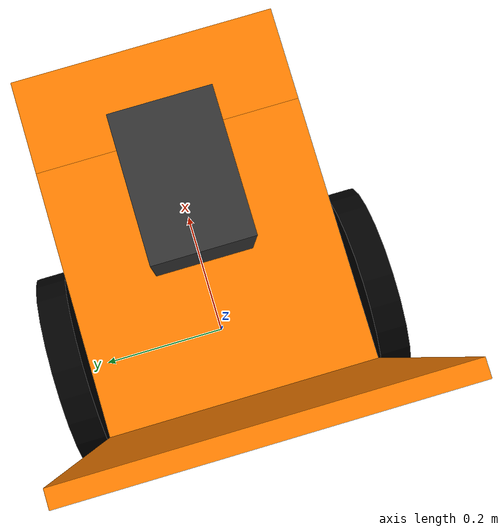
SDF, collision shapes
<?xml version="1.0"?>
<sdf version="1.9">
  <model name="orne_boxF">

    <link name="base_footprint">

      <inertial>
        <pose>0.091102 0 0.176713 0 -0 0</pose>
        <mass>25.4</mass>
        <inertia>
          <ixx>1.22486</ixx>
          <ixy>0</ixy>
          <ixz>0.016878</ixz>
          <iyy>3.58311</iyy>
          <iyz>0</iyz>
          <izz>3.93825</izz>
        </inertia>
      </inertial>

      <collision name="base_link_collision">
        <pose>0.09 0 0.1715 0 -0 0</pose>
        <geometry>
          <box>
            <size>0.4 0.404 0.202</size>
          </box>
        </geometry>
        <surface>
          <contact><ode/></contact>
          <friction>
            <ode>
              <mu>0.8</mu>
              <mu2>0.8</mu2>
            </ode>
          </friction>
        </surface>
      </collision>

      <collision name="base_link_collision_1">
        <pose>0.36125 0 0.2625 0 -0 0</pose>
        <geometry>
          <box>
            <size>0.1425 0.404 0.02</size>
          </box>
        </geometry>
        <surface>
          <contact><ode/></contact>
          <friction>
            <ode>
              <mu>0.8</mu>
              <mu2>0.8</mu2>
            </ode>
          </friction>
        </surface>
      </collision>

      <collision name="base_link_collision_2">
        <pose>0.35625 0 0.156 0 -0 0</pose>
        <geometry>
          <box>
            <size>0.1325 0.404 0.02</size>
          </box>
        </geometry>
        <surface>
          <contact><ode/></contact>
          <friction>
            <ode>
              <mu>0.8</mu>
              <mu2>0.8</mu2>
            </ode>
          </friction>
        </surface>
      </collision>

      <collision name="base_link_collision_3">
        <pose>-0.12 0 0.4815 0 -0 0</pose>
        <geometry>
          <box>
            <size>0.02 0.404 0.822</size>
          </box>
        </geometry>
        <surface>
          <contact><ode/></contact>
          <friction>
            <ode>
              <mu>0.8</mu>
              <mu2>0.8</mu2>
            </ode>
          </friction>
        </surface>
      </collision>

      <visual name="base_link_visual">
        <pose>0.09 0 0.1715 0 -0 0</pose>
        <geometry>
          <box>
            <size>0.4 0.404 0.202</size>
          </box>
        </geometry>
        <material>
          <ambient>1.0 0.5 0.0 1</ambient>
          <diffuse>1.0 0.5 0.0 1</diffuse>
          <specular>0.1 0.1 0.1 1</specular>
          <emissive>0 0 0 1</emissive>
        </material>
      </visual>

      <visual name="base_link_visual_1">
        <pose>0.36125 0 0.2625 0 -0 0</pose>
        <geometry>
          <box>
            <size>0.1425 0.404 0.02</size>
          </box>
        </geometry>
        <material>
          <ambient>1.0 0.5 0.0 1</ambient>
          <diffuse>1.0 0.5 0.0 1</diffuse>
          <specular>0.1 0.1 0.1 1</specular>
          <emissive>0 0 0 1</emissive>
        </material>
      </visual>

      <visual name="base_link_visual_2">
        <pose>0.35625 0 0.156 0 -0 0</pose>
        <geometry>
          <box>
            <size>0.1325 0.404 0.02</size>
          </box>
        </geometry>
        <material>
          <ambient>1.0 0.5 0.0 1</ambient>
          <diffuse>1.0 0.5 0.0 1</diffuse>
          <specular>0.1 0.1 0.1 1</specular>
          <emissive>0 0 0 1</emissive>
        </material>
      </visual>

      <visual name="base_link_visual_3">
        <pose>-0.12 0 0.4815 0 -0 0</pose>
        <geometry>
          <box>
            <size>0.02 0.404 0.822</size>
          </box>
        </geometry>
        <material>
          <ambient>1.0 0.5 0.0 1</ambient>
          <diffuse>1.0 0.5 0.0 1</diffuse>
          <specular>0.1 0.1 0.1 1</specular>
          <emissive>0 0 0 1</emissive>
        </material>
      </visual>

    </link>

    <joint name="rsf_x001_joint" type="fixed">
      <pose relative_to="base_footprint">0.3 0 0.35 0 -0 0</pose>
      <parent>base_footprint</parent>
      <child>rsf_x001_link</child>
    </joint>

    <link name="rsf_x001_link">
      <pose relative_to="rsf_x001_joint">0 0 0 0 -0 0</pose>

      <inertial>
        <pose>-0.1 0 0.0053 0 -0 0</pose>
        <mass>3.0</mass>
        <inertia>
          <ixx>0.001</ixx>
          <ixy>0</ixy>
          <ixz>0</ixz>
          <iyy>0.001</iyy>
          <iyz>0</iyz>
          <izz>0.001</izz>
        </inertia>
      </inertial>

      <collision name="rsf_x001_collision">
        <pose>-0.1 0 0.0053 0 -0 0</pose>
        <geometry>
          <box>
            <size>0.2112 0.147 0.1656</size>
          </box>
        </geometry>
        <surface>
          <contact><ode/></contact>
          <friction><ode/></friction>
        </surface>
      </collision>

      <visual name="rsf_x001_visual">
        <pose>-0.0296 0 -0.0775 1.5708 -0 1.5708</pose>
        <geometry>
          <mesh>
            <scale>0.001 0.001 0.001</scale>
            <uri>package://rsf_simulator/models/orne_boxF/meshes/RSF-X001.stl</uri>
          </mesh>
        </geometry>
        <material>
          <ambient>0.2 0.2 0.2 1</ambient>
          <diffuse>0.2 0.2 0.2 1</diffuse>
          <specular>0.1 0.1 0.1 1</specular>
          <emissive>0 0 0 1</emissive>
        </material>
      </visual>

      <sensor name="rsf_imu" type="imu">
        <topic>/rsf/imu</topic>
        <update_rate>1000</update_rate>
        <always_on>1</always_on>
        <visualize>0</visualize>
        <pose>-0.1 0 -0.02 0 -0 0</pose>
        <ignition_frame_id>rsf_hokuyo3d_imu</ignition_frame_id>
        <gz_frame_id>rsf_hokuyo3d_imu</gz_frame_id>
      </sensor>

      <sensor name="rsf_gnss" type="navsat">
        <topic>/rsf/nav_sat_fix</topic>
        <update_rate>1</update_rate>
        <always_on>1</always_on>
        <pose>-0.1 0 0.085 0 -0 0</pose>
        <ignition_frame_id>rsf_gnss</ignition_frame_id>
        <gz_frame_id>rsf_gnss</gz_frame_id>
      </sensor>

    </link>

    <joint name="rsf_hokuyo3d_joint" type="fixed">
      <pose relative_to="rsf_x001_link">0 0 0 0 -0 0</pose>
      <parent>rsf_x001_link</parent>
      <child>rsf_hokuyo3d</child>
    </joint>

    <link name="rsf_hokuyo3d">
      <pose relative_to="rsf_hokuyo3d_joint">0 0 0 0 -0 0</pose>
      <inertial>
        <mass>0.01</mass>
        <inertia>
          <ixx>1e-5</ixx>
          <ixy>0</ixy>
          <ixz>0</ixz>
          <iyy>1e-5</iyy>
          <iyz>0</iyz>
          <izz>1e-5</izz>
        </inertia>
      </inertial>

      <sensor name="rsf_hokuyo3d" type="gpu_lidar">
        <topic>/rsf/hokuyo3d</topic>
        <update_rate>20</update_rate>
        <lidar>
          <scan>
            <horizontal>
              <samples>36</samples>
              <resolution>1</resolution>
              <min_angle>-1.8326</min_angle>
              <max_angle>1.8326</max_angle>
            </horizontal>
            <vertical>
              <samples>74</samples>
              <resolution>1</resolution>
              <min_angle>-0.0873</min_angle>
              <max_angle>0.6109</max_angle>
            </vertical>
          </scan>
          <range>
            <min>0.3</min>
            <max>35.0</max>
            <resolution>0.01</resolution>
          </range>
        </lidar>
        <visualize>true</visualize>
        <pose>0 0 0 0 -0 0</pose>
        <ignition_frame_id>rsf_hokuyo3d</ignition_frame_id>
        <gz_frame_id>rsf_hokuyo3d</gz_frame_id>
        <always_on>1</always_on>
      </sensor>
    </link>

    <joint name="left_caster_ball_joint" type="ball">
      <pose relative_to="base_footprint">0.392 0.15 0.05 0 -0 0</pose>
      <parent>base_footprint</parent>
      <child>left_caster_wheel_link</child>
    </joint>

    <link name="left_caster_wheel_link">
      <pose relative_to="left_caster_ball_joint">0 0 0 1.5708 0 0</pose>
      <inertial>
        <pose>0 0 0 0 -0 0</pose>
        <mass>0.3</mass>
        <inertia>
          <ixx>0.001</ixx>
          <ixy>0</ixy>
          <ixz>0</ixz>
          <iyy>0.001</iyy>
          <iyz>0</iyz>
          <izz>0.001</izz>
        </inertia>
      </inertial>
      <collision name="left_caster_wheel_link_collision">
        <pose>0 0 0 0 -0 0</pose>
        <geometry>
          <sphere>
            <radius>0.05</radius>
          </sphere>
        </geometry>
        <surface>
          <contact><ode/></contact>
          <friction>
            <ode>
              <mu>0.8</mu>
              <mu2>0.8</mu2>
            </ode>
          </friction>
        </surface>
      </collision>
      <visual name="left_caster_wheel_link_visual">
        <pose>0 0 0 0 -0 0</pose>
        <geometry>
          <sphere>
            <radius>0.05</radius>
          </sphere>
        </geometry>
        <material>
          <ambient>0.0 0.0 0.0 1</ambient>
          <diffuse>0.0 0.0 0.0 1</diffuse>
          <specular>0.1 0.1 0.1 1</specular>
          <emissive>0 0 0 1</emissive>
        </material>
      </visual>
    </link>

    <joint name="left_wheel_joint" type="revolute">
      <pose relative_to="base_footprint">0 0.23075 0.152 -1.5708 0 0</pose>
      <parent>base_footprint</parent>
      <child>left_wheel_link</child>
      <axis>
        <xyz>0 0 1</xyz>
        <limit>
          <effort>10.5</effort>
          <velocity>10</velocity>
          <lower>-1e+16</lower>
          <upper>1e+16</upper>
        </limit>
        <dynamics>
          <damping>0.05</damping>
          <friction>0</friction>
          <spring_reference>0</spring_reference>
          <spring_stiffness>0</spring_stiffness>
        </dynamics>
      </axis>
    </joint>

    <link name="left_wheel_link">
      <pose relative_to="left_wheel_joint">0 0 0 0 -0 0</pose>
      <inertial>
        <pose>0 0 0 0 -0 0</pose>
        <mass>0.15</mass>
        <inertia>
          <ixx>0.005</ixx>
          <ixy>0</ixy>
          <ixz>0</ixz>
          <iyy>0.005</iyy>
          <iyz>0</iyz>
          <izz>0.01</izz>
        </inertia>
      </inertial>
      <collision name="left_wheel_link_collision">
        <pose>0 0 0 0 -0 0</pose>
        <geometry>
          <cylinder>
            <length>0.045</length>
            <radius>0.152</radius>
          </cylinder>
        </geometry>
        <surface>
          <contact><ode/></contact>
          <friction>
            <ode>
              <mu>0.8</mu>
              <mu2>0.8</mu2>
            </ode>
          </friction>
        </surface>
      </collision>
      <visual name="left_wheel_link_visual">
        <pose>0 0 0 0 -0 0</pose>
        <geometry>
          <cylinder>
            <length>0.045</length>
            <radius>0.152</radius>
          </cylinder>
        </geometry>
        <material>
          <ambient>0.0 0.0 0.0 1</ambient>
          <diffuse>0.0 0.0 0.0 1</diffuse>
          <specular>0.1 0.1 0.1 1</specular>
          <emissive>0 0 0 1</emissive>
        </material>
      </visual>
    </link>

    <joint name="right_caster_ball_joint" type="ball">
      <pose relative_to="base_footprint">0.392 -0.15 0.05 0 -0 0</pose>
      <parent>base_footprint</parent>
      <child>right_caster_wheel_link</child>
    </joint>

    <link name="right_caster_wheel_link">
      <pose relative_to="right_caster_ball_joint">0 0 0 1.5708 0 0</pose>
      <inertial>
        <pose>0 0 0 0 -0 0</pose>
        <mass>0.3</mass>
        <inertia>
          <ixx>0.001</ixx>
          <ixy>0</ixy>
          <ixz>0</ixz>
          <iyy>0.001</iyy>
          <iyz>0</iyz>
          <izz>0.001</izz>
        </inertia>
      </inertial>
      <collision name="right_caster_wheel_link_collision">
        <pose>0 0 0 0 -0 0</pose>
        <geometry>
          <sphere>
            <radius>0.05</radius>
          </sphere>
        </geometry>
        <surface>
          <contact><ode/></contact>
          <friction>
            <ode>
              <mu>0.8</mu>
              <mu2>0.8</mu2>
            </ode>
          </friction>
        </surface>
      </collision>
      <visual name="right_caster_wheel_link_visual">
        <pose>0 0 0 0 -0 0</pose>
        <geometry>
          <sphere>
            <radius>0.05</radius>
          </sphere>
        </geometry>
        <material>
          <ambient>0.0 0.0 0.0 1</ambient>
          <diffuse>0.0 0.0 0.0 1</diffuse>
          <specular>0.1 0.1 0.1 1</specular>
          <emissive>0 0 0 1</emissive>
        </material>
      </visual>
    </link>

    <joint name="right_wheel_joint" type="revolute">
      <pose relative_to="base_footprint">0 -0.23075 0.152 -1.5708 0 0</pose>
      <parent>base_footprint</parent>
      <child>right_wheel_link</child>
      <axis>
        <xyz>0 0 1</xyz>
        <limit>
          <effort>10.5</effort>
          <velocity>10</velocity>
          <lower>-1e+16</lower>
          <upper>1e+16</upper>
        </limit>
        <dynamics>
          <damping>0.05</damping>
          <friction>0</friction>
          <spring_reference>0</spring_reference>
          <spring_stiffness>0</spring_stiffness>
        </dynamics>
      </axis>
    </joint>

    <link name="right_wheel_link">
      <pose relative_to="right_wheel_joint">0 0 0 0 -0 0</pose>
      <inertial>
        <pose>0 0 0 0 -0 0</pose>
        <mass>0.15</mass>
        <inertia>
          <ixx>0.005</ixx>
          <ixy>0</ixy>
          <ixz>0</ixz>
          <iyy>0.005</iyy>
          <iyz>0</iyz>
          <izz>0.01</izz>
        </inertia>
      </inertial>
      <collision name="right_wheel_link_collision">
        <pose>0 0 0 0 -0 0</pose>
        <geometry>
          <cylinder>
            <length>0.045</length>
            <radius>0.152</radius>
          </cylinder>
        </geometry>
        <surface>
          <contact><ode/></contact>
          <friction>
            <ode>
              <mu>0.8</mu>
              <mu2>0.8</mu2>
            </ode>
          </friction>
        </surface>
      </collision>
      <visual name="right_wheel_link_visual">
        <pose>0 0 0 0 -0 0</pose>
        <geometry>
          <cylinder>
            <length>0.045</length>
            <radius>0.152</radius>
          </cylinder>
        </geometry>
        <material>
          <ambient>0.0 0.0 0.0 1</ambient>
          <diffuse>0.0 0.0 0.0 1</diffuse>
          <specular>0.1 0.1 0.1 1</specular>
          <emissive>0 0 0 1</emissive>
        </material>
      </visual>
    </link>

    <plugin name="ignition::gazebo::systems::DiffDrive" filename="libignition-gazebo-diff-drive-system.so">
      <left_joint>left_wheel_joint</left_joint>
      <right_joint>right_wheel_joint</right_joint>
      <wheel_separation>0.4615</wheel_separation>
      <wheel_radius>0.145</wheel_radius>
      <odom_publish_frequency>30</odom_publish_frequency>
      <topic>cmd_vel</topic>
      <odom_topic>wheel_odom</odom_topic>
      <frame_id>odom</frame_id>
      <child_frame_id>base_footprint</child_frame_id>
    </plugin>

    <plugin name="ignition::gazebo::systems::OdometryPublisher" filename="libignition-gazebo-odometry-publisher-system.so">
      <odom_frame>rsf_odom</odom_frame>
      <robot_base_frame>rsf_hokuyo3d</robot_base_frame>
      <odom_publish_frequency>100</odom_publish_frequency>
      <odom_topic>odom</odom_topic>
      <dimensions>3</dimensions>
      <gaussian_noise>0.0</gaussian_noise>
    </plugin>

    <static>0</static>

  </model>
</sdf>
